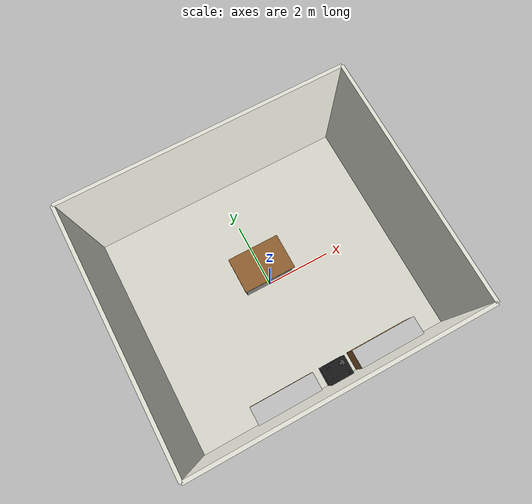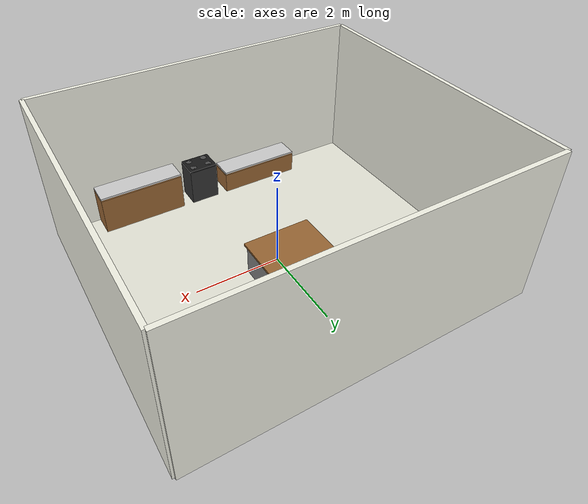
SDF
<?xml version="1.0"?>
<sdf version="1.7">
  <model name="custom_kitchen">
    <static>true</static>

    <!-- Floor -->
    <link name="floor">
      <pose>0 0 -0.05 0 0 0</pose>
      <visual name="floor_visual">
        <geometry>
          <box>
            <size>8.0 7.0 0.1</size>
          </box>
        </geometry>
        <material>
          <diffuse>0.9 0.9 0.85 1.0</diffuse>
        </material>
      </visual>
      <collision name="floor_collision">
        <geometry>
          <box>
            <size>8.0 7.0 0.1</size>
          </box>
        </geometry>
      </collision>
    </link>

    <!-- Back Wall -->
    <link name="back_wall">
      <pose>0 -3.5 1.75 0 0 0</pose>
      <visual name="back_wall_visual">
        <geometry>
          <box>
            <size>8.0 0.1 3.6</size>
          </box>
        </geometry>
        <material>
          <diffuse>0.95 0.95 0.9 1.0</diffuse>
        </material>
      </visual>
      <collision name="back_wall_collision">
        <geometry>
          <box>
            <size>8.0 0.1 3.6</size>
          </box>
        </geometry>
      </collision>
    </link>

    <!-- Front Wall -->
    <link name="front_wall">
      <pose>0 3.5 1.75 0 0 0</pose>
      <visual name="front_wall_visual">
        <geometry>
          <box>
            <size>8.0 0.1 3.6</size>
          </box>
        </geometry>
        <material>
          <diffuse>0.95 0.95 0.9 1.0</diffuse>
        </material>
      </visual>
      <collision name="front_wall_collision">
        <geometry>
          <box>
            <size>8.0 0.1 3.6</size>
          </box>
        </geometry>
      </collision>
    </link>

    <!-- Left Wall -->
    <link name="left_wall">
      <pose>-4.0 0 1.75 0 0 0</pose>
      <visual name="left_wall_visual">
        <geometry>
          <box>
            <size>0.1 7.0 3.6</size>
          </box>
        </geometry>
        <material>
          <diffuse>0.95 0.95 0.9 1.0</diffuse>
        </material>
      </visual>
      <collision name="left_wall_collision">
        <geometry>
          <box>
            <size>0.1 7.0 3.6</size>
          </box>
        </geometry>
      </collision>
    </link>

    <!-- Right Wall -->
    <link name="right_wall">
      <pose>4.0 0 1.75 0 0 0</pose>
      <visual name="right_wall_visual">
        <geometry>
          <box>
            <size>0.1 7.0 3.6</size>
          </box>
        </geometry>
        <material>
          <diffuse>0.95 0.95 0.9 1.0</diffuse>
        </material>
      </visual>
      <collision name="right_wall_collision">
        <geometry>
          <box>
            <size>0.1 7.0 3.6</size>
          </box>
        </geometry>
      </collision>
    </link>

    <!-- Stove -->
    <link name="stove_body">
      <pose>0.4 -3.2 0.45 0 0 0</pose>
      <visual name="visual">
        <geometry>
          <box>
            <size>0.7 0.6 0.9</size>
          </box>
        </geometry>
        <material>
          <diffuse>0.2 0.2 0.2 1.0</diffuse>
        </material>
      </visual>
      <collision name="collision">
        <geometry>
          <box>
            <size>0.7 0.6 0.9</size>
          </box>
        </geometry>
      </collision>
    </link>

    <link name="stove_top">
      <pose>0.4 -3.2 0.915 0 0 0</pose>
      <visual name="visual">
        <geometry>
          <box>
            <size>0.7 0.6 0.05</size>
          </box>
        </geometry>
        <material>
          <diffuse>0.1 0.1 0.1 1.0</diffuse>
        </material>
      </visual>
      <collision name="collision">
        <geometry>
          <box>
            <size>0.7 0.6 0.05</size>
          </box>
        </geometry>
      </collision>
    </link>

    <!-- Burners -->
    <link name="burner_0">
      <pose>0.2 -3.35 0.93 0 0 0</pose>
      <visual name="visual">
        <geometry>
          <cylinder>
            <radius>0.08</radius>
            <length>0.02</length>
          </cylinder>
        </geometry>
        <material>
          <diffuse>0.3 0.3 0.3 1.0</diffuse>
        </material>
      </visual>
      <collision name="collision">
        <geometry>
          <cylinder>
            <radius>0.08</radius>
            <length>0.02</length>
          </cylinder>
        </geometry>
      </collision>
    </link>

    <link name="burner_1">
      <pose>0.6 -3.35 0.93 0 0 0</pose>
      <visual name="visual">
        <geometry>
          <cylinder>
            <radius>0.08</radius>
            <length>0.02</length>
          </cylinder>
        </geometry>
        <material>
          <diffuse>0.3 0.3 0.3 1.0</diffuse>
        </material>
      </visual>
      <collision name="collision">
        <geometry>
          <cylinder>
            <radius>0.08</radius>
            <length>0.02</length>
          </cylinder>
        </geometry>
      </collision>
    </link>

    <link name="burner_2">
      <pose>0.2 -3.05 0.93 0 0 0</pose>
      <visual name="visual">
        <geometry>
          <cylinder>
            <radius>0.08</radius>
            <length>0.02</length>
          </cylinder>
        </geometry>
        <material>
          <diffuse>0.3 0.3 0.3 1.0</diffuse>
        </material>
      </visual>
      <collision name="collision">
        <geometry>
          <cylinder>
            <radius>0.08</radius>
            <length>0.02</length>
          </cylinder>
        </geometry>
      </collision>
    </link>

    <link name="burner_3">
      <pose>0.6 -3.05 0.93 0 0 0</pose>
      <visual name="visual">
        <geometry>
          <cylinder>
            <radius>0.08</radius>
            <length>0.02</length>
          </cylinder>
        </geometry>
        <material>
          <diffuse>0.3 0.3 0.3 1.0</diffuse>
        </material>
      </visual>
      <collision name="collision">
        <geometry>
          <cylinder>
            <radius>0.08</radius>
            <length>0.02</length>
          </cylinder>
        </geometry>
      </collision>
    </link>

    <!-- Back Wall Countertop (between stove and fridge) -->
    <link name="back_countertop">
      <pose>2.0 -3.2 0.95 0 0 0</pose>
      <visual name="visual">
        <geometry>
          <box>
            <size>2.0 0.6 0.05</size>
          </box>
        </geometry>
        <material>
          <diffuse>0.8 0.8 0.8 1.0</diffuse>
        </material>
      </visual>
      <collision name="collision">
        <geometry>
          <box>
            <size>2.0 0.6 0.05</size>
          </box>
        </geometry>
      </collision>
    </link>

    <!-- Lower Cabinet under back countertop -->
    <link name="back_lower_cabinet">
      <pose>2.0 -3.2 0.45 0 0 0</pose>
      <visual name="visual">
        <geometry>
          <box>
            <size>2.0 0.6 0.9</size>
          </box>
        </geometry>
        <material>
          <diffuse>0.6 0.4 0.2 1.0</diffuse>
        </material>
      </visual>
      <collision name="collision">
        <geometry>
          <box>
            <size>2.0 0.6 0.9</size>
          </box>
        </geometry>
      </collision>
    </link>

    <!-- Left Side Platform (for shelves) -->
    <link name="left_platform_countertop">
      <pose>-1.2 -3.2 0.55 0 0 0</pose>
      <visual name="visual">
        <geometry>
          <box>
            <size>2.0 0.6 0.05</size>
          </box>
        </geometry>
        <material>
          <diffuse>0.8 0.8 0.8 1.0</diffuse>
        </material>
      </visual>
      <collision name="collision">
        <geometry>
          <box>
            <size>2.0 0.6 0.05</size>
          </box>
        </geometry>
      </collision>
    </link>

    <!-- Lower Cabinet under left platform -->
    <link name="left_lower_cabinet">
      <pose>-1.2 -3.2 0.25 0 0 0</pose>
      <visual name="visual">
        <geometry>
          <box>
            <size>2.0 0.6 0.5</size>
          </box>
        </geometry>
        <material>
          <diffuse>0.6 0.4 0.2 1.0</diffuse>
        </material>
      </visual>
      <collision name="collision">
        <geometry>
          <box>
            <size>2.0 0.6 0.5</size>
          </box>
        </geometry>
      </collision>
    </link>

    <!-- Kitchen Island -->
    <link name="island_base">
      <pose>0.0 0.5 0.30 0 0 0</pose>
      <visual name="visual">
        <geometry>
          <box>
            <size>1.5 1.0 0.9</size>
          </box>
        </geometry>
        <material>
          <diffuse>0.5 0.5 0.5 1.0</diffuse>
        </material>
      </visual>
      <collision name="collision">
        <geometry>
          <box>
            <size>1.5 1.0 0.9</size>
          </box>
        </geometry>
      </collision>
    </link>

    <link name="island_counter">
      <pose>0.0 0.5 0.775 0 0 0</pose>
      <visual name="visual">
        <geometry>
          <box>
            <size>1.6 1.1 0.05</size>
          </box>
        </geometry>
        <material>
          <diffuse>0.6 0.4 0.2 1.0</diffuse>
        </material>
      </visual>
      <collision name="collision">
        <geometry>
          <box>
            <size>1.6 1.1 0.05</size>
          </box>
        </geometry>
      </collision>
    </link>

  </model>

</sdf>
